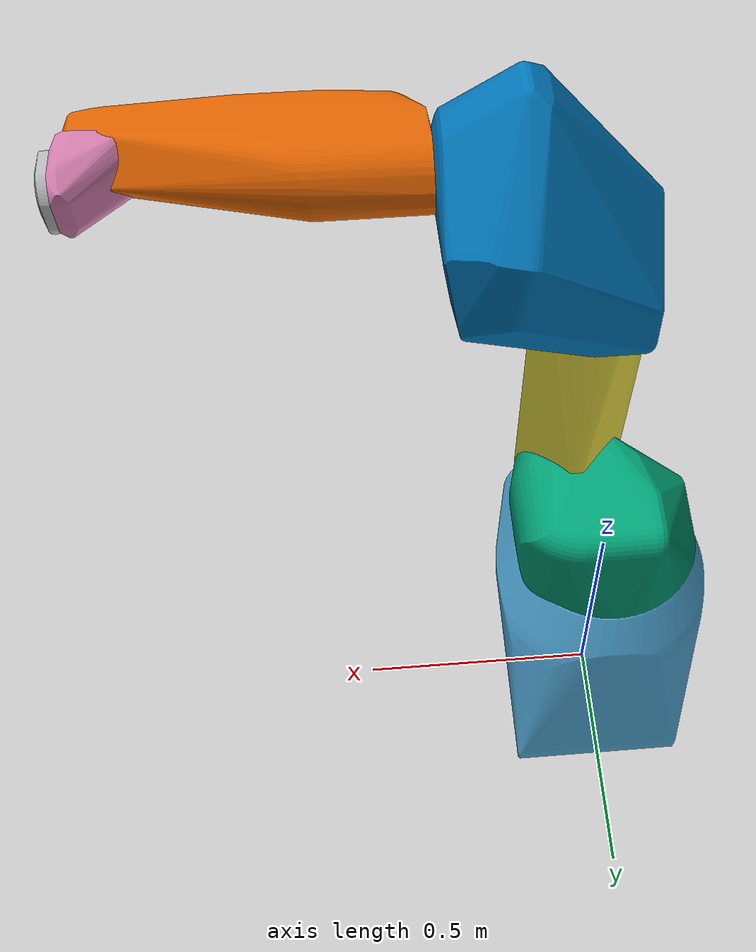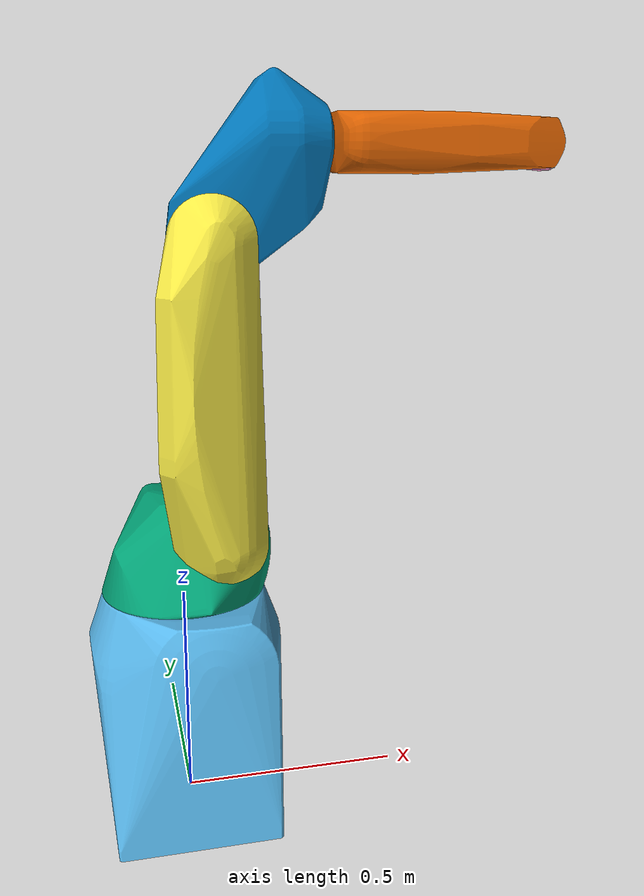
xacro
<?xml version="1.0"?>
<robot xmlns:xacro="http://www.ros.org/wiki/xacro" name="cr_15ia">
  <xacro:arg name="prefix" default=""/>
  <xacro:include filename="$(find fanuc_robot_descriptions)/urdf/cr_15ia_macro.xacro"/>
  <link name="world"/>
  <xacro:cr_15ia prefix="$(arg prefix)" parent="world">
    <origin xyz="0 0 0" rpy="0 0 0"/>
  </xacro:cr_15ia>
</robot>

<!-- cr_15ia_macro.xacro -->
<robot xmlns:xacro="http://www.ros.org/wiki/xacro">

  <!-- Fanuc CR-15iA - generated from RoboDK .robot -->
  <xacro:macro name="cr_15ia" params="prefix parent *origin">

    <material name="${prefix}cr_15ia_grey"><color rgba="0.85 0.85 0.85 1.0"/></material>

    <joint name="${prefix}base_joint" type="fixed">
      <xacro:insert_block name="origin"/>
      <parent link="${parent}"/>
      <child link="${prefix}base_link"/>
    </joint>

    <link name="${prefix}base_link">
      <visual>
        <origin xyz="0 0 0" rpy="0 0 0"/>
        <geometry>
          <mesh filename="package://fanuc_robot_descriptions/meshes/cr_15ia/visual/base_link.dae" scale="0.001 0.001 0.001"/>
        </geometry>
      </visual>
      <collision>
        <origin xyz="0 0 0" rpy="0 0 0"/>
        <geometry>
          <mesh filename="package://fanuc_robot_descriptions/meshes/cr_15ia/collision/base_link.stl" scale="0.001 0.001 0.001"/>
        </geometry>
      </collision>
    </link>

    <link name="${prefix}link_1">
      <visual>
        <origin xyz="0 0 0" rpy="0 0 0"/>
        <geometry>
          <mesh filename="package://fanuc_robot_descriptions/meshes/cr_15ia/visual/link_1.dae" scale="0.001 0.001 0.001"/>
        </geometry>
      </visual>
      <collision>
        <origin xyz="0 0 0" rpy="0 0 0"/>
        <geometry>
          <mesh filename="package://fanuc_robot_descriptions/meshes/cr_15ia/collision/link_1.stl" scale="0.001 0.001 0.001"/>
        </geometry>
      </collision>
    </link>

    <link name="${prefix}link_2">
      <visual>
        <origin xyz="0 0 0" rpy="0 0 0"/>
        <geometry>
          <mesh filename="package://fanuc_robot_descriptions/meshes/cr_15ia/visual/link_2.dae" scale="0.001 0.001 0.001"/>
        </geometry>
      </visual>
      <collision>
        <origin xyz="0 0 0" rpy="0 0 0"/>
        <geometry>
          <mesh filename="package://fanuc_robot_descriptions/meshes/cr_15ia/collision/link_2.stl" scale="0.001 0.001 0.001"/>
        </geometry>
      </collision>
    </link>

    <link name="${prefix}link_3">
      <visual>
        <origin xyz="0 0 0" rpy="0 0 0"/>
        <geometry>
          <mesh filename="package://fanuc_robot_descriptions/meshes/cr_15ia/visual/link_3.dae" scale="0.001 0.001 0.001"/>
        </geometry>
      </visual>
      <collision>
        <origin xyz="0 0 0" rpy="0 0 0"/>
        <geometry>
          <mesh filename="package://fanuc_robot_descriptions/meshes/cr_15ia/collision/link_3.stl" scale="0.001 0.001 0.001"/>
        </geometry>
      </collision>
    </link>

    <link name="${prefix}link_4">
      <visual>
        <origin xyz="0 0 0" rpy="0 0 0"/>
        <geometry>
          <mesh filename="package://fanuc_robot_descriptions/meshes/cr_15ia/visual/link_4.dae" scale="0.001 0.001 0.001"/>
        </geometry>
      </visual>
      <collision>
        <origin xyz="0 0 0" rpy="0 0 0"/>
        <geometry>
          <mesh filename="package://fanuc_robot_descriptions/meshes/cr_15ia/collision/link_4.stl" scale="0.001 0.001 0.001"/>
        </geometry>
      </collision>
    </link>

    <link name="${prefix}link_5">
      <visual>
        <origin xyz="0 0 0" rpy="0 0 0"/>
        <geometry>
          <mesh filename="package://fanuc_robot_descriptions/meshes/cr_15ia/visual/link_5.dae" scale="0.001 0.001 0.001"/>
        </geometry>
      </visual>
      <collision>
        <origin xyz="0 0 0" rpy="0 0 0"/>
        <geometry>
          <mesh filename="package://fanuc_robot_descriptions/meshes/cr_15ia/collision/link_5.stl" scale="0.001 0.001 0.001"/>
        </geometry>
      </collision>
    </link>

    <link name="${prefix}link_6">
      <visual>
        <origin xyz="0 0 0" rpy="0 0 0"/>
        <geometry>
          <mesh filename="package://fanuc_robot_descriptions/meshes/cr_15ia/visual/link_6.dae" scale="0.001 0.001 0.001"/>
        </geometry>
      </visual>
      <collision>
        <origin xyz="0 0 0" rpy="0 0 0"/>
        <geometry>
          <mesh filename="package://fanuc_robot_descriptions/meshes/cr_15ia/collision/link_6.stl" scale="0.001 0.001 0.001"/>
        </geometry>
      </collision>
    </link>

    <joint name="${prefix}joint_1" type="revolute">
      <parent link="${prefix}base_link"/>
      <child link="${prefix}link_1"/>
      <origin xyz="0 0 0.648" rpy="0 -0 0"/>
      <axis xyz="0 0 1"/>
      <limit lower="-3.2288591" upper="3.2288591" effort="100.0" velocity="3.1416"/>
    </joint>

    <joint name="${prefix}joint_2" type="revolute">
      <parent link="${prefix}link_1"/>
      <child link="${prefix}link_2"/>
      <origin xyz="0.075 0 0" rpy="-1.5707963 -1.5707963 0"/>
      <axis xyz="0 0 1"/>
      <limit lower="-3.1415927" upper="3.1415927" effort="100.0" velocity="3.1416"/>
    </joint>

    <joint name="${prefix}joint_3" type="revolute">
      <parent link="${prefix}link_2"/>
      <child link="${prefix}link_3"/>
      <origin xyz="0.64 0 0" rpy="0 -0 0"/>
      <axis xyz="0 0 1"/>
      <limit lower="-2.6179939" upper="2.8797933" effort="100.0" velocity="3.1416"/>
    </joint>

    <joint name="${prefix}joint_4" type="revolute">
      <parent link="${prefix}link_3"/>
      <child link="${prefix}link_4"/>
      <origin xyz="0.195 0.7 4.2862638e-17" rpy="-1.5707963 -0 0"/>
      <axis xyz="0 0 1"/>
      <limit lower="-3.3161256" upper="3.3161256" effort="100.0" velocity="3.1416"/>
    </joint>

    <joint name="${prefix}joint_5" type="revolute">
      <parent link="${prefix}link_4"/>
      <child link="${prefix}link_5"/>
      <origin xyz="0 0 0" rpy="1.5707963 -0 0"/>
      <axis xyz="0 0 1"/>
      <limit lower="-2.443461" upper="2.443461" effort="100.0" velocity="3.1416"/>
    </joint>

    <joint name="${prefix}joint_6" type="revolute">
      <parent link="${prefix}link_5"/>
      <child link="${prefix}link_6"/>
      <origin xyz="0 0.075 4.5924255e-18" rpy="1.5707963 1.2246468e-16 3.1415927"/>
      <axis xyz="0 0 1"/>
      <limit lower="-7.8539816" upper="7.8539816" effort="100.0" velocity="3.1416"/>
    </joint>

    <link name="${prefix}flange"/>
    <joint name="${prefix}link_6-flange" type="fixed">
      <parent link="${prefix}link_6"/>
      <child link="${prefix}flange"/>
      <origin xyz="0 0 0" rpy="0 0 0"/>
    </joint>
    <link name="${prefix}tool0"/>
    <joint name="${prefix}flange-tool0" type="fixed">
      <parent link="${prefix}flange"/>
      <child link="${prefix}tool0"/>
      <origin xyz="0 0 0" rpy="0 0 0"/>
    </joint>

  </xacro:macro>
</robot>
